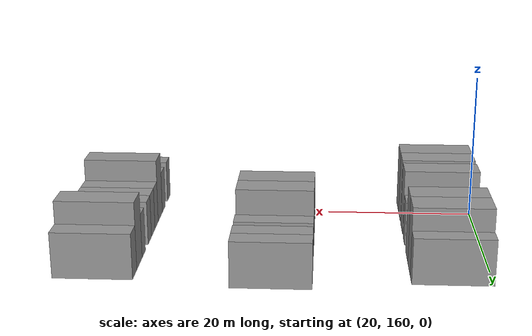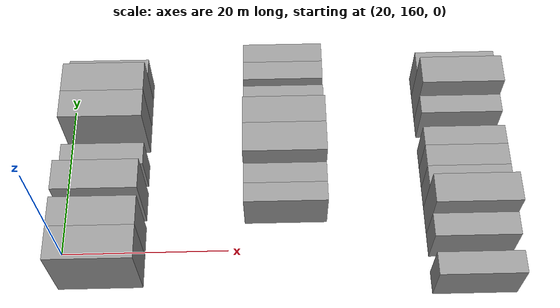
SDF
<sdf version="1.6">
 <world name="default">
  <model name="building_99">
   <static>1</static>
   <pose>25.0000 157.5738 0 0.000000 0.000000 0.000000</pose>
   <link name="link">
    <pose>0 0 4.50 0 0 0</pose>
    <collision name="collision"><geometry><box><size>10.0000 4.0370 9.0000</size></box></geometry></collision>
    <visual name="visual">
     <cast_shadows>0</cast_shadows>
     <geometry><box><size>10.0000 4.0370 9.0000</size></box></geometry>
     <material>
      <script>
       <uri>model://grey_wall/materials/scripts</uri>
       <uri>model://grey_wall/materials/textures</uri>
       <name>vrc/grey_wall</name>
      </script>
     </material>
    </visual>
   </link>
  </model>
  <model name="building_100">
   <static>1</static>
   <pose>25.0000 161.4119 0 0.000000 0.000000 0.000000</pose>
   <link name="link">
    <pose>0 0 4.50 0 0 0</pose>
    <collision name="collision"><geometry><box><size>10.0000 3.6393 9.0000</size></box></geometry></collision>
    <visual name="visual">
     <cast_shadows>0</cast_shadows>
     <geometry><box><size>10.0000 3.6393 9.0000</size></box></geometry>
     <material>
      <script>
       <uri>model://grey_wall/materials/scripts</uri>
       <uri>model://grey_wall/materials/textures</uri>
       <name>vrc/grey_wall</name>
      </script>
     </material>
    </visual>
   </link>
  </model>
  <model name="building_101">
   <static>1</static>
   <pose>25.0000 166.0980 0 0.000000 0.000000 0.000000</pose>
   <link name="link">
    <pose>0 0 4.50 0 0 0</pose>
    <collision name="collision"><geometry><box><size>10.0000 3.7331 9.0000</size></box></geometry></collision>
    <visual name="visual">
     <cast_shadows>0</cast_shadows>
     <geometry><box><size>10.0000 3.7331 9.0000</size></box></geometry>
     <material>
      <script>
       <uri>model://grey_wall/materials/scripts</uri>
       <uri>model://grey_wall/materials/textures</uri>
       <name>vrc/grey_wall</name>
      </script>
     </material>
    </visual>
   </link>
  </model>
  <model name="building_102">
   <static>1</static>
   <pose>25.0000 170.4230 0 0.000000 0.000000 0.000000</pose>
   <link name="link">
    <pose>0 0 3.00 0 0 0</pose>
    <collision name="collision"><geometry><box><size>10.0000 2.9168 6.0000</size></box></geometry></collision>
    <visual name="visual">
     <cast_shadows>0</cast_shadows>
     <geometry><box><size>10.0000 2.9168 6.0000</size></box></geometry>
     <material>
      <script>
       <uri>model://grey_wall/materials/scripts</uri>
       <uri>model://grey_wall/materials/textures</uri>
       <name>vrc/grey_wall</name>
      </script>
     </material>
    </visual>
   </link>
  </model>
  <model name="building_103">
   <static>1</static>
   <pose>25.0000 175.7344 0 0.000000 0.000000 0.000000</pose>
   <link name="link">
    <pose>0 0 4.50 0 0 0</pose>
    <collision name="collision"><geometry><box><size>10.0000 3.7061 9.0000</size></box></geometry></collision>
    <visual name="visual">
     <cast_shadows>0</cast_shadows>
     <geometry><box><size>10.0000 3.7061 9.0000</size></box></geometry>
     <material>
      <script>
       <uri>model://grey_wall/materials/scripts</uri>
       <uri>model://grey_wall/materials/textures</uri>
       <name>vrc/grey_wall</name>
      </script>
     </material>
    </visual>
   </link>
  </model>
  <model name="building_104">
   <static>1</static>
   <pose>25.0000 179.5957 0 0.000000 0.000000 0.000000</pose>
   <link name="link">
    <pose>0 0 4.50 0 0 0</pose>
    <collision name="collision"><geometry><box><size>10.0000 4.0163 9.0000</size></box></geometry></collision>
    <visual name="visual">
     <cast_shadows>0</cast_shadows>
     <geometry><box><size>10.0000 4.0163 9.0000</size></box></geometry>
     <material>
      <script>
       <uri>model://grey_wall/materials/scripts</uri>
       <uri>model://grey_wall/materials/textures</uri>
       <name>vrc/grey_wall</name>
      </script>
     </material>
    </visual>
   </link>
  </model>
  <model name="building_105">
   <static>1</static>
   <pose>25.0000 182.8342 0 0.000000 0.000000 0.000000</pose>
   <link name="link">
    <pose>0 0 3.00 0 0 0</pose>
    <collision name="collision"><geometry><box><size>10.0000 2.4608 6.0000</size></box></geometry></collision>
    <visual name="visual">
     <cast_shadows>0</cast_shadows>
     <geometry><box><size>10.0000 2.4608 6.0000</size></box></geometry>
     <material>
      <script>
       <uri>model://grey_wall/materials/scripts</uri>
       <uri>model://grey_wall/materials/textures</uri>
       <name>vrc/grey_wall</name>
      </script>
     </material>
    </visual>
   </link>
  </model>
  <model name="building_222">
   <static>1</static>
   <pose>47.0000 164.8490 0 0.000000 0.000000 0.000000</pose>
   <link name="link">
    <pose>0 0 3.00 0 0 0</pose>
    <collision name="collision"><geometry><box><size>10.0000 2.4682 6.0000</size></box></geometry></collision>
    <visual name="visual">
     <cast_shadows>0</cast_shadows>
     <geometry><box><size>10.0000 2.4682 6.0000</size></box></geometry>
     <material>
      <script>
       <uri>model://grey_wall/materials/scripts</uri>
       <uri>model://grey_wall/materials/textures</uri>
       <name>vrc/grey_wall</name>
      </script>
     </material>
    </visual>
   </link>
  </model>
  <model name="building_223">
   <static>1</static>
   <pose>47.0000 167.3962 0 0.000000 0.000000 0.000000</pose>
   <link name="link">
    <pose>0 0 3.00 0 0 0</pose>
    <collision name="collision"><geometry><box><size>10.0000 2.6261 6.0000</size></box></geometry></collision>
    <visual name="visual">
     <cast_shadows>0</cast_shadows>
     <geometry><box><size>10.0000 2.6261 6.0000</size></box></geometry>
     <material>
      <script>
       <uri>model://grey_wall/materials/scripts</uri>
       <uri>model://grey_wall/materials/textures</uri>
       <name>vrc/grey_wall</name>
      </script>
     </material>
    </visual>
   </link>
  </model>
  <model name="building_224">
   <static>1</static>
   <pose>47.0000 170.6503 0 0.000000 0.000000 0.000000</pose>
   <link name="link">
    <pose>0 0 4.50 0 0 0</pose>
    <collision name="collision"><geometry><box><size>10.0000 3.8821 9.0000</size></box></geometry></collision>
    <visual name="visual">
     <cast_shadows>0</cast_shadows>
     <geometry><box><size>10.0000 3.8821 9.0000</size></box></geometry>
     <material>
      <script>
       <uri>model://grey_wall/materials/scripts</uri>
       <uri>model://grey_wall/materials/textures</uri>
       <name>vrc/grey_wall</name>
      </script>
     </material>
    </visual>
   </link>
  </model>
  <model name="building_225">
   <static>1</static>
   <pose>47.0000 174.4135 0 0.000000 0.000000 0.000000</pose>
   <link name="link">
    <pose>0 0 4.50 0 0 0</pose>
    <collision name="collision"><geometry><box><size>10.0000 3.6443 9.0000</size></box></geometry></collision>
    <visual name="visual">
     <cast_shadows>0</cast_shadows>
     <geometry><box><size>10.0000 3.6443 9.0000</size></box></geometry>
     <material>
      <script>
       <uri>model://grey_wall/materials/scripts</uri>
       <uri>model://grey_wall/materials/textures</uri>
       <name>vrc/grey_wall</name>
      </script>
     </material>
    </visual>
   </link>
  </model>
  <model name="building_226">
   <static>1</static>
   <pose>47.0000 178.5030 0 0.000000 0.000000 0.000000</pose>
   <link name="link">
    <pose>0 0 3.00 0 0 0</pose>
    <collision name="collision"><geometry><box><size>10.0000 2.5347 6.0000</size></box></geometry></collision>
    <visual name="visual">
     <cast_shadows>0</cast_shadows>
     <geometry><box><size>10.0000 2.5347 6.0000</size></box></geometry>
     <material>
      <script>
       <uri>model://grey_wall/materials/scripts</uri>
       <uri>model://grey_wall/materials/textures</uri>
       <name>vrc/grey_wall</name>
      </script>
     </material>
    </visual>
   </link>
  </model>
  <model name="building_227">
   <static>1</static>
   <pose>47.0000 182.0857 0 0.000000 0.000000 0.000000</pose>
   <link name="link">
    <pose>0 0 3.00 0 0 0</pose>
    <collision name="collision"><geometry><box><size>10.0000 2.6307 6.0000</size></box></geometry></collision>
    <visual name="visual">
     <cast_shadows>0</cast_shadows>
     <geometry><box><size>10.0000 2.6307 6.0000</size></box></geometry>
     <material>
      <script>
       <uri>model://grey_wall/materials/scripts</uri>
       <uri>model://grey_wall/materials/textures</uri>
       <name>vrc/grey_wall</name>
      </script>
     </material>
    </visual>
   </link>
  </model>
  <model name="building_228">
   <static>1</static>
   <pose>47.0000 184.7591 0 0.000000 0.000000 0.000000</pose>
   <link name="link">
    <pose>0 0 3.00 0 0 0</pose>
    <collision name="collision"><geometry><box><size>10.0000 2.7161 6.0000</size></box></geometry></collision>
    <visual name="visual">
     <cast_shadows>0</cast_shadows>
     <geometry><box><size>10.0000 2.7161 6.0000</size></box></geometry>
     <material>
      <script>
       <uri>model://grey_wall/materials/scripts</uri>
       <uri>model://grey_wall/materials/textures</uri>
       <name>vrc/grey_wall</name>
      </script>
     </material>
    </visual>
   </link>
  </model>
  <model name="building_343">
   <static>1</static>
   <pose>69.0000 155.3784 0 0.000000 0.000000 0.000000</pose>
   <link name="link">
    <pose>0 0 3.00 0 0 0</pose>
    <collision name="collision"><geometry><box><size>10.0000 2.7477 6.0000</size></box></geometry></collision>
    <visual name="visual">
     <cast_shadows>0</cast_shadows>
     <geometry><box><size>10.0000 2.7477 6.0000</size></box></geometry>
     <material>
      <script>
       <uri>model://grey_wall/materials/scripts</uri>
       <uri>model://grey_wall/materials/textures</uri>
       <name>vrc/grey_wall</name>
      </script>
     </material>
    </visual>
   </link>
  </model>
  <model name="building_344">
   <static>1</static>
   <pose>69.0000 160.1771 0 0.000000 0.000000 0.000000</pose>
   <link name="link">
    <pose>0 0 3.00 0 0 0</pose>
    <collision name="collision"><geometry><box><size>10.0000 2.8495 6.0000</size></box></geometry></collision>
    <visual name="visual">
     <cast_shadows>0</cast_shadows>
     <geometry><box><size>10.0000 2.8495 6.0000</size></box></geometry>
     <material>
      <script>
       <uri>model://grey_wall/materials/scripts</uri>
       <uri>model://grey_wall/materials/textures</uri>
       <name>vrc/grey_wall</name>
      </script>
     </material>
    </visual>
   </link>
  </model>
  <model name="building_345">
   <static>1</static>
   <pose>69.0000 163.4025 0 0.000000 0.000000 0.000000</pose>
   <link name="link">
    <pose>0 0 4.50 0 0 0</pose>
    <collision name="collision"><geometry><box><size>10.0000 3.6014 9.0000</size></box></geometry></collision>
    <visual name="visual">
     <cast_shadows>0</cast_shadows>
     <geometry><box><size>10.0000 3.6014 9.0000</size></box></geometry>
     <material>
      <script>
       <uri>model://grey_wall/materials/scripts</uri>
       <uri>model://grey_wall/materials/textures</uri>
       <name>vrc/grey_wall</name>
      </script>
     </material>
    </visual>
   </link>
  </model>
  <model name="building_346">
   <static>1</static>
   <pose>69.0000 166.5585 0 0.000000 0.000000 0.000000</pose>
   <link name="link">
    <pose>0 0 3.00 0 0 0</pose>
    <collision name="collision"><geometry><box><size>10.0000 2.7105 6.0000</size></box></geometry></collision>
    <visual name="visual">
     <cast_shadows>0</cast_shadows>
     <geometry><box><size>10.0000 2.7105 6.0000</size></box></geometry>
     <material>
      <script>
       <uri>model://grey_wall/materials/scripts</uri>
       <uri>model://grey_wall/materials/textures</uri>
       <name>vrc/grey_wall</name>
      </script>
     </material>
    </visual>
   </link>
  </model>
  <model name="building_347">
   <static>1</static>
   <pose>69.0000 169.3353 0 0.000000 0.000000 0.000000</pose>
   <link name="link">
    <pose>0 0 3.00 0 0 0</pose>
    <collision name="collision"><geometry><box><size>10.0000 2.8430 6.0000</size></box></geometry></collision>
    <visual name="visual">
     <cast_shadows>0</cast_shadows>
     <geometry><box><size>10.0000 2.8430 6.0000</size></box></geometry>
     <material>
      <script>
       <uri>model://grey_wall/materials/scripts</uri>
       <uri>model://grey_wall/materials/textures</uri>
       <name>vrc/grey_wall</name>
      </script>
     </material>
    </visual>
   </link>
  </model>
  <model name="building_348">
   <static>1</static>
   <pose>69.0000 172.0501 0 0.000000 0.000000 0.000000</pose>
   <link name="link">
    <pose>0 0 3.00 0 0 0</pose>
    <collision name="collision"><geometry><box><size>10.0000 2.5866 6.0000</size></box></geometry></collision>
    <visual name="visual">
     <cast_shadows>0</cast_shadows>
     <geometry><box><size>10.0000 2.5866 6.0000</size></box></geometry>
     <material>
      <script>
       <uri>model://grey_wall/materials/scripts</uri>
       <uri>model://grey_wall/materials/textures</uri>
       <name>vrc/grey_wall</name>
      </script>
     </material>
    </visual>
   </link>
  </model>
  <model name="building_349">
   <static>1</static>
   <pose>69.0000 176.5861 0 0.000000 0.000000 0.000000</pose>
   <link name="link">
    <pose>0 0 3.00 0 0 0</pose>
    <collision name="collision"><geometry><box><size>10.0000 2.4854 6.0000</size></box></geometry></collision>
    <visual name="visual">
     <cast_shadows>0</cast_shadows>
     <geometry><box><size>10.0000 2.4854 6.0000</size></box></geometry>
     <material>
      <script>
       <uri>model://grey_wall/materials/scripts</uri>
       <uri>model://grey_wall/materials/textures</uri>
       <name>vrc/grey_wall</name>
      </script>
     </material>
    </visual>
   </link>
  </model>
  <model name="building_350">
   <static>1</static>
   <pose>69.0000 179.6881 0 0.000000 0.000000 0.000000</pose>
   <link name="link">
    <pose>0 0 4.50 0 0 0</pose>
    <collision name="collision"><geometry><box><size>10.0000 3.7187 9.0000</size></box></geometry></collision>
    <visual name="visual">
     <cast_shadows>0</cast_shadows>
     <geometry><box><size>10.0000 3.7187 9.0000</size></box></geometry>
     <material>
      <script>
       <uri>model://grey_wall/materials/scripts</uri>
       <uri>model://grey_wall/materials/textures</uri>
       <name>vrc/grey_wall</name>
      </script>
     </material>
    </visual>
   </link>
  </model>
  <model name="building_351">
   <static>1</static>
   <pose>69.0000 182.9796 0 0.000000 0.000000 0.000000</pose>
   <link name="link">
    <pose>0 0 3.00 0 0 0</pose>
    <collision name="collision"><geometry><box><size>10.0000 2.8643 6.0000</size></box></geometry></collision>
    <visual name="visual">
     <cast_shadows>0</cast_shadows>
     <geometry><box><size>10.0000 2.8643 6.0000</size></box></geometry>
     <material>
      <script>
       <uri>model://grey_wall/materials/scripts</uri>
       <uri>model://grey_wall/materials/textures</uri>
       <name>vrc/grey_wall</name>
      </script>
     </material>
    </visual>
   </link>
  </model>
 </world>
</sdf>
